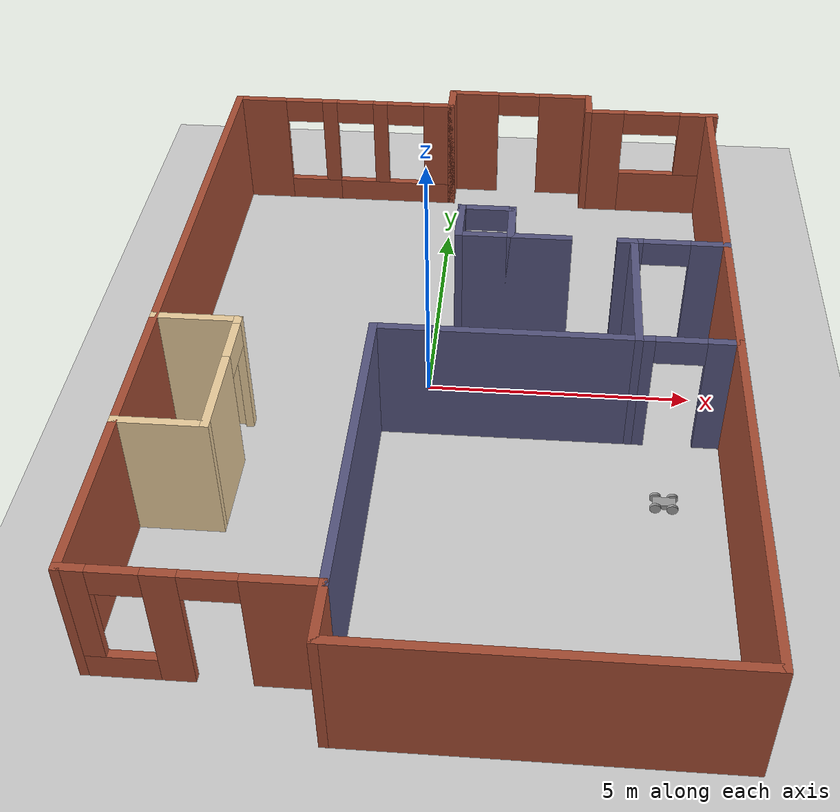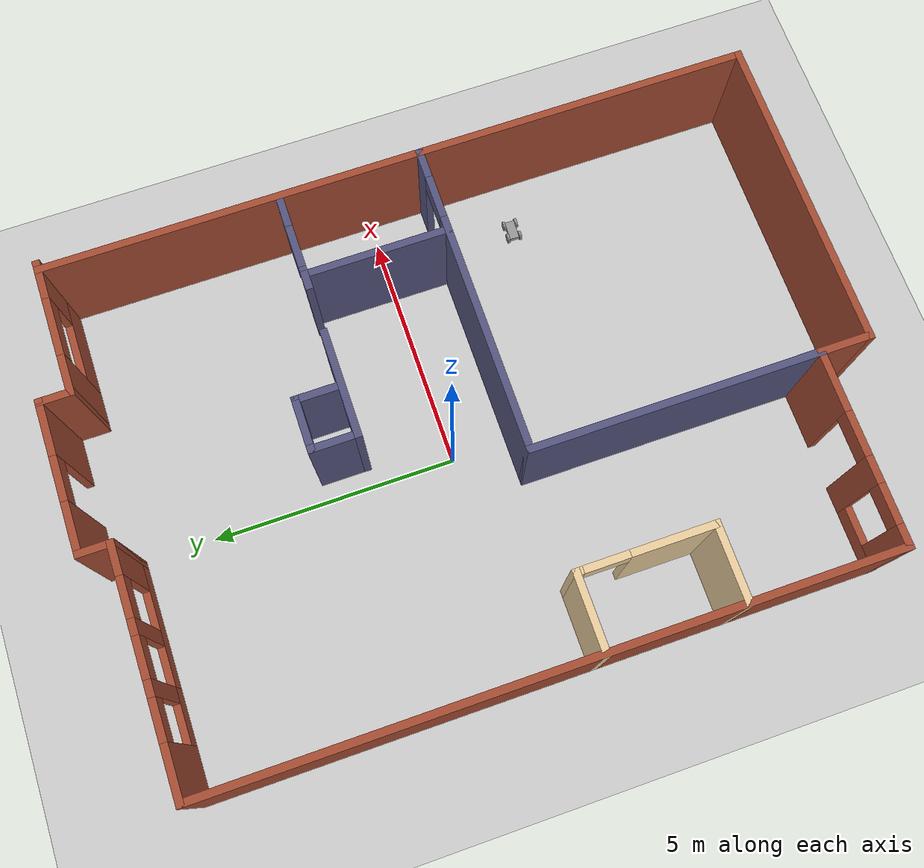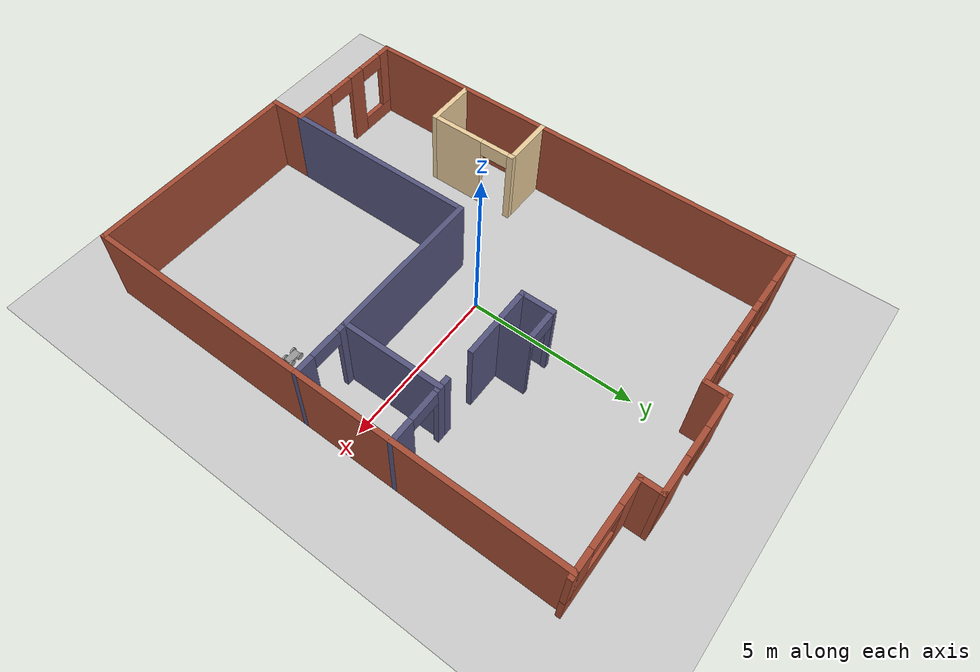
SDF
<sdf version="1.6">
 <world name="default">
  <model name="ground_plane">
   <static>1</static>
   <link name="link">
    <collision name="collision">
     <geometry><plane><normal>0 0 1</normal><size>100 100</size></plane></geometry>
     <surface>
      <contact><collide_bitmask>65535</collide_bitmask></contact>
      <friction><ode><mu>100</mu><mu2>50</mu2></ode></friction>
     </surface>
    </collision>
    <visual name="visual">
     <cast_shadows>0</cast_shadows>
     <geometry><plane><normal>0 0 1</normal><size>100 100</size></plane></geometry>
     <material>
      <script><uri>file://media/materials/scripts/gazebo.material</uri><name>Gazebo/Grey</name></script>
     </material>
    </visual>
   </link>
  </model>
  <model name="car">
   <link name="link_0">
    <inertial>
     <mass>1</mass>
     <inertia>
      <ixx>0.166667</ixx>
      <ixy>0</ixy>
      <ixz>0</ixz>
      <iyy>0.166667</iyy>
      <iyz>0</iyz>
      <izz>0.166667</izz>
     </inertia>
    </inertial>
    <visual name="visual">
     <geometry><box><size>0.4 0.2 0.1</size></box></geometry>
     <material>
      <lighting>1</lighting>
      <script><uri>file://media/materials/scripts/gazebo.material</uri><name>Gazebo/Grey</name></script>
      <shader type="pixel"><normal_map>__default__</normal_map></shader>
      <ambient>0.3 0.3 0.3 1</ambient>
      <diffuse>0.7 0.7 0.7 1</diffuse>
      <specular>0.01 0.01 0.01 1</specular>
      <emissive>0 0 0 1</emissive>
     </material>
    </visual>
    <collision name="collision">
     <geometry><box><size>0.4 0.2 0.1</size></box></geometry>
     <surface>
      <friction>
       <ode><mu>1</mu><mu2>1</mu2><fdir1>0 0 0</fdir1><slip1>0</slip1><slip2>0</slip2></ode>
       <torsional>
        <coefficient>1</coefficient>
        <patch_radius>0</patch_radius>
        <surface_radius>0</surface_radius>
        <use_patch_radius>1</use_patch_radius>
        <ode><slip>0</slip></ode>
       </torsional>
      </friction>
      <bounce><restitution_coefficient>0</restitution_coefficient><threshold>1e+06</threshold></bounce>
      <contact>
       <collide_without_contact>0</collide_without_contact>
       <collide_without_contact_bitmask>1</collide_without_contact_bitmask>
       <collide_bitmask>1</collide_bitmask>
       <ode>
        <soft_cfm>0</soft_cfm>
        <soft_erp>0.2</soft_erp>
        <kp>1e+13</kp>
        <kd>1</kd>
        <max_vel>0.01</max_vel>
        <min_depth>0</min_depth>
       </ode>
       <bullet>
        <split_impulse>1</split_impulse>
        <split_impulse_penetration_threshold>-0.01</split_impulse_penetration_threshold>
        <soft_cfm>0</soft_cfm>
        <soft_erp>0.2</soft_erp>
        <kp>1e+13</kp>
        <kd>1</kd>
       </bullet>
      </contact>
     </surface>
    </collision>
   </link>
   <link name="link_1">
    <pose>0.15 -0.13 0 0 -0 0</pose>
    <inertial>
     <mass>1</mass>
     <inertia><ixx>0.145833</ixx><ixy>0</ixy><ixz>0</ixz><iyy>0.145833</iyy><iyz>0</iyz><izz>0.125</izz></inertia>
    </inertial>
    <visual name="visual">
     <pose>0 0 0 1.5707 -0 0</pose>
     <geometry><cylinder><radius>0.1</radius><length>0.05</length></cylinder></geometry>
     <material>
      <lighting>1</lighting>
      <script><uri>file://media/materials/scripts/gazebo.material</uri><name>Gazebo/Grey</name></script>
      <shader type="pixel"><normal_map>__default__</normal_map></shader>
      <ambient>0.3 0.3 0.3 1</ambient>
      <diffuse>0.7 0.7 0.7 1</diffuse>
      <specular>0.01 0.01 0.01 1</specular>
      <emissive>0 0 0 1</emissive>
     </material>
    </visual>
    <collision name="collision">
     <pose>0 0 0 1.5707 -0 0</pose>
     <geometry><cylinder><radius>0.1</radius><length>0.05</length></cylinder></geometry>
     <surface>
      <friction>
       <ode><mu>1</mu><mu2>1</mu2><fdir1>0 0 0</fdir1><slip1>0</slip1><slip2>0</slip2></ode>
       <torsional>
        <coefficient>1</coefficient>
        <patch_radius>0</patch_radius>
        <surface_radius>0</surface_radius>
        <use_patch_radius>1</use_patch_radius>
        <ode><slip>0</slip></ode>
       </torsional>
      </friction>
      <bounce><restitution_coefficient>0</restitution_coefficient><threshold>1e+06</threshold></bounce>
      <contact>
       <collide_without_contact>0</collide_without_contact>
       <collide_without_contact_bitmask>1</collide_without_contact_bitmask>
       <collide_bitmask>1</collide_bitmask>
       <ode>
        <soft_cfm>0</soft_cfm>
        <soft_erp>0.2</soft_erp>
        <kp>1e+13</kp>
        <kd>1</kd>
        <max_vel>0.01</max_vel>
        <min_depth>0</min_depth>
       </ode>
       <bullet>
        <split_impulse>1</split_impulse>
        <split_impulse_penetration_threshold>-0.01</split_impulse_penetration_threshold>
        <soft_cfm>0</soft_cfm>
        <soft_erp>0.2</soft_erp>
        <kp>1e+13</kp>
        <kd>1</kd>
       </bullet>
      </contact>
     </surface>
    </collision>
   </link>
   <link name="link_1_clone">
    <pose>0.15 0.13 0 0 -0 0</pose>
    <inertial>
     <mass>1</mass>
     <inertia><ixx>0.145833</ixx><ixy>0</ixy><ixz>0</ixz><iyy>0.145833</iyy><iyz>0</iyz><izz>0.125</izz></inertia>
    </inertial>
    <visual name="visual">
     <pose>0 0 0 1.5707 -0 0</pose>
     <geometry><cylinder><radius>0.1</radius><length>0.05</length></cylinder></geometry>
     <material>
      <lighting>1</lighting>
      <script><uri>file://media/materials/scripts/gazebo.material</uri><name>Gazebo/Grey</name></script>
      <shader type="pixel"><normal_map>__default__</normal_map></shader>
      <ambient>0.3 0.3 0.3 1</ambient>
      <diffuse>0.7 0.7 0.7 1</diffuse>
      <specular>0.01 0.01 0.01 1</specular>
      <emissive>0 0 0 1</emissive>
     </material>
    </visual>
    <collision name="collision">
     <pose>0 0 0 1.5707 -0 0</pose>
     <geometry><cylinder><radius>0.1</radius><length>0.05</length></cylinder></geometry>
     <surface>
      <friction>
       <ode><mu>1</mu><mu2>1</mu2><fdir1>0 0 0</fdir1><slip1>0</slip1><slip2>0</slip2></ode>
       <torsional>
        <coefficient>1</coefficient>
        <patch_radius>0</patch_radius>
        <surface_radius>0</surface_radius>
        <use_patch_radius>1</use_patch_radius>
        <ode><slip>0</slip></ode>
       </torsional>
      </friction>
      <bounce><restitution_coefficient>0</restitution_coefficient><threshold>1e+06</threshold></bounce>
      <contact>
       <collide_without_contact>0</collide_without_contact>
       <collide_without_contact_bitmask>1</collide_without_contact_bitmask>
       <collide_bitmask>1</collide_bitmask>
       <ode>
        <soft_cfm>0</soft_cfm>
        <soft_erp>0.2</soft_erp>
        <kp>1e+13</kp>
        <kd>1</kd>
        <max_vel>0.01</max_vel>
        <min_depth>0</min_depth>
       </ode>
       <bullet>
        <split_impulse>1</split_impulse>
        <split_impulse_penetration_threshold>-0.01</split_impulse_penetration_threshold>
        <soft_cfm>0</soft_cfm>
        <soft_erp>0.2</soft_erp>
        <kp>1e+13</kp>
        <kd>1</kd>
       </bullet>
      </contact>
     </surface>
    </collision>
   </link>
   <link name="link_1_clone_0">
    <pose>-0.15 -0.13 0 0 -0 0</pose>
    <inertial>
     <mass>1</mass>
     <inertia><ixx>0.145833</ixx><ixy>0</ixy><ixz>0</ixz><iyy>0.145833</iyy><iyz>0</iyz><izz>0.125</izz></inertia>
    </inertial>
    <visual name="visual">
     <pose>0 0 0 1.5707 -0 0</pose>
     <geometry><cylinder><radius>0.1</radius><length>0.05</length></cylinder></geometry>
     <material>
      <lighting>1</lighting>
      <script><uri>file://media/materials/scripts/gazebo.material</uri><name>Gazebo/Grey</name></script>
      <shader type="pixel"><normal_map>__default__</normal_map></shader>
      <ambient>0.3 0.3 0.3 1</ambient>
      <diffuse>0.7 0.7 0.7 1</diffuse>
      <specular>0.01 0.01 0.01 1</specular>
      <emissive>0 0 0 1</emissive>
     </material>
    </visual>
    <collision name="collision">
     <pose>0 0 0 1.5707 -0 0</pose>
     <geometry><cylinder><radius>0.1</radius><length>0.05</length></cylinder></geometry>
     <surface>
      <friction>
       <ode><mu>1</mu><mu2>1</mu2><fdir1>0 0 0</fdir1><slip1>0</slip1><slip2>0</slip2></ode>
       <torsional>
        <coefficient>1</coefficient>
        <patch_radius>0</patch_radius>
        <surface_radius>0</surface_radius>
        <use_patch_radius>1</use_patch_radius>
        <ode><slip>0</slip></ode>
       </torsional>
      </friction>
      <bounce><restitution_coefficient>0</restitution_coefficient><threshold>1e+06</threshold></bounce>
      <contact>
       <collide_without_contact>0</collide_without_contact>
       <collide_without_contact_bitmask>1</collide_without_contact_bitmask>
       <collide_bitmask>1</collide_bitmask>
       <ode>
        <soft_cfm>0</soft_cfm>
        <soft_erp>0.2</soft_erp>
        <kp>1e+13</kp>
        <kd>1</kd>
        <max_vel>0.01</max_vel>
        <min_depth>0</min_depth>
       </ode>
       <bullet>
        <split_impulse>1</split_impulse>
        <split_impulse_penetration_threshold>-0.01</split_impulse_penetration_threshold>
        <soft_cfm>0</soft_cfm>
        <soft_erp>0.2</soft_erp>
        <kp>1e+13</kp>
        <kd>1</kd>
       </bullet>
      </contact>
     </surface>
    </collision>
   </link>
   <link name="link_1_clone_1">
    <pose>-0.15 0.13 0 0 -0 0</pose>
    <inertial>
     <mass>1</mass>
     <inertia><ixx>0.145833</ixx><ixy>0</ixy><ixz>0</ixz><iyy>0.145833</iyy><iyz>0</iyz><izz>0.125</izz></inertia>
    </inertial>
    <visual name="visual">
     <pose>0 0 0 1.5707 -0 0</pose>
     <geometry><cylinder><radius>0.1</radius><length>0.05</length></cylinder></geometry>
     <material>
      <lighting>1</lighting>
      <script><uri>file://media/materials/scripts/gazebo.material</uri><name>Gazebo/Grey</name></script>
      <shader type="pixel"><normal_map>__default__</normal_map></shader>
      <ambient>0.3 0.3 0.3 1</ambient>
      <diffuse>0.7 0.7 0.7 1</diffuse>
      <specular>0.01 0.01 0.01 1</specular>
      <emissive>0 0 0 1</emissive>
     </material>
    </visual>
    <collision name="collision">
     <pose>0 0 0 1.5707 -0 0</pose>
     <geometry><cylinder><radius>0.1</radius><length>0.05</length></cylinder></geometry>
     <surface>
      <friction>
       <ode><mu>1</mu><mu2>1</mu2><fdir1>0 0 0</fdir1><slip1>0</slip1><slip2>0</slip2></ode>
       <torsional>
        <coefficient>1</coefficient>
        <patch_radius>0</patch_radius>
        <surface_radius>0</surface_radius>
        <use_patch_radius>1</use_patch_radius>
        <ode><slip>0</slip></ode>
       </torsional>
      </friction>
      <bounce><restitution_coefficient>0</restitution_coefficient><threshold>1e+06</threshold></bounce>
      <contact>
       <collide_without_contact>0</collide_without_contact>
       <collide_without_contact_bitmask>1</collide_without_contact_bitmask>
       <collide_bitmask>1</collide_bitmask>
       <ode>
        <soft_cfm>0</soft_cfm>
        <soft_erp>0.2</soft_erp>
        <kp>1e+13</kp>
        <kd>1</kd>
        <max_vel>0.01</max_vel>
        <min_depth>0</min_depth>
       </ode>
       <bullet>
        <split_impulse>1</split_impulse>
        <split_impulse_penetration_threshold>-0.01</split_impulse_penetration_threshold>
        <soft_cfm>0</soft_cfm>
        <soft_erp>0.2</soft_erp>
        <kp>1e+13</kp>
        <kd>1</kd>
       </bullet>
      </contact>
     </surface>
    </collision>
   </link>
   <joint name="link_0_JOINT_1" type="revolute">
    <parent>link_0</parent>
    <child>link_1</child>
    <axis>
     <xyz>0 1 0</xyz>
     <use_parent_model_frame>0</use_parent_model_frame>
     <limit>
      <lower>-1.79769e+308</lower>
      <upper>1.79769e+308</upper>
      <effort>-1</effort>
      <velocity>-1</velocity>
     </limit>
     <dynamics>
      <spring_reference>0</spring_reference>
      <spring_stiffness>0</spring_stiffness>
      <damping>0</damping>
     </dynamics>
    </axis>
    <physics>
     <ode><limit><cfm>0</cfm><erp>0.2</erp></limit><suspension><cfm>0</cfm><erp>0.2</erp></suspension></ode>
    </physics>
   </joint>
   <joint name="link_0_JOINT_2" type="revolute">
    <parent>link_0</parent>
    <child>link_1_clone</child>
    <axis>
     <xyz>0 -1 0</xyz>
     <use_parent_model_frame>0</use_parent_model_frame>
     <limit>
      <lower>-1.79769e+308</lower>
      <upper>1.79769e+308</upper>
      <effort>-1</effort>
      <velocity>-1</velocity>
     </limit>
     <dynamics>
      <spring_reference>0</spring_reference>
      <spring_stiffness>0</spring_stiffness>
      <damping>0</damping>
     </dynamics>
    </axis>
    <physics>
     <ode><limit><cfm>0</cfm><erp>0.2</erp></limit><suspension><cfm>0</cfm><erp>0.2</erp></suspension></ode>
    </physics>
   </joint>
   <joint name="link_0_JOINT_3" type="revolute">
    <parent>link_0</parent>
    <child>link_1_clone_0</child>
    <axis>
     <xyz>0 1 0</xyz>
     <use_parent_model_frame>0</use_parent_model_frame>
     <limit>
      <lower>-1.79769e+308</lower>
      <upper>1.79769e+308</upper>
      <effort>-1</effort>
      <velocity>-1</velocity>
     </limit>
     <dynamics>
      <spring_reference>0</spring_reference>
      <spring_stiffness>0</spring_stiffness>
      <damping>0</damping>
     </dynamics>
    </axis>
    <physics>
     <ode><limit><cfm>0</cfm><erp>0.2</erp></limit><suspension><cfm>0</cfm><erp>0.2</erp></suspension></ode>
    </physics>
   </joint>
   <joint name="link_0_JOINT_4" type="revolute">
    <parent>link_0</parent>
    <child>link_1_clone_1</child>
    <axis>
     <xyz>0 -1 0</xyz>
     <use_parent_model_frame>0</use_parent_model_frame>
     <limit>
      <lower>-1.79769e+308</lower>
      <upper>1.79769e+308</upper>
      <effort>-1</effort>
      <velocity>-1</velocity>
     </limit>
     <dynamics>
      <spring_reference>0</spring_reference>
      <spring_stiffness>0</spring_stiffness>
      <damping>0</damping>
     </dynamics>
    </axis>
    <physics>
     <ode><limit><cfm>0</cfm><erp>0.2</erp></limit><suspension><cfm>0</cfm><erp>0.2</erp></suspension></ode>
    </physics>
   </joint>
   <static>0</static>
   <pose>4.39353 -2.83757 0.099999 -1e-06 1.8e-05 -0.035914</pose>
  </model>
  <model name="house">
   <pose>0.45685 -0.464017 0 0 -0 0</pose>
   <link name="Wall_0">
    <collision name="Wall_0_Collision">
     <geometry><box><size>13.65 0.15 2.5</size></box></geometry>
     <pose>0 0 1.25 0 -0 0</pose>
    </collision>
    <visual name="Wall_0_Visual">
     <pose>0 0 1.25 0 -0 0</pose>
     <geometry><box><size>13.65 0.15 2.5</size></box></geometry>
     <material>
      <script><uri>file://media/materials/scripts/gazebo.material</uri><name>Gazebo/Bricks</name></script>
      <ambient>1 1 1 1</ambient>
     </material>
     <meta><layer>0</layer></meta>
    </visual>
    <pose>-5.21103 0.2 0 0 -0 1.5708</pose>
   </link>
   <link name="Wall_1">
    <pose>-2.86103 6.95 0 0 -0 0</pose>
    <visual name="Wall_1_Visual_0">
     <pose>-1.86275 0 1.25 0 -0 0</pose>
     <geometry><box><size>1.12451 0.15 2.5</size></box></geometry>
     <material>
      <script><uri>file://media/materials/scripts/gazebo.material</uri><name>Gazebo/Bricks</name></script>
      <ambient>1 1 1 1</ambient>
     </material>
     <meta><layer>0</layer></meta>
    </visual>
    <collision name="Wall_1_Collision_0">
     <geometry><box><size>1.12451 0.15 2.5</size></box></geometry>
     <pose>-1.86275 0 1.25 0 -0 0</pose>
    </collision>
    <visual name="Wall_1_Visual_1">
     <pose>-0.739033 0 0.25 0 -0 0</pose>
     <geometry><box><size>1.12292 0.15 0.5</size></box></geometry>
     <material>
      <script><uri>file://media/materials/scripts/gazebo.material</uri><name>Gazebo/Bricks</name></script>
      <ambient>1 1 1 1</ambient>
     </material>
     <meta><layer>0</layer></meta>
    </visual>
    <collision name="Wall_1_Collision_1">
     <geometry><box><size>1.12292 0.15 0.5</size></box></geometry>
     <pose>-0.739033 0 0.25 0 -0 0</pose>
    </collision>
    <visual name="Wall_1_Visual_2">
     <pose>1.12371 0 0.25 0 -0 0</pose>
     <geometry><box><size>2.60257 0.15 0.5</size></box></geometry>
     <material>
      <script><uri>file://media/materials/scripts/gazebo.material</uri><name>Gazebo/Bricks</name></script>
      <ambient>1 1 1 1</ambient>
     </material>
     <meta><layer>0</layer></meta>
    </visual>
    <collision name="Wall_1_Collision_2">
     <geometry><box><size>2.60257 0.15 0.5</size></box></geometry>
     <pose>1.12371 0 0.25 0 -0 0</pose>
    </collision>
    <visual name="Wall_1_Visual_3">
     <pose>0.779084 0 1.5 0 -0 0</pose>
     <geometry><box><size>0.313318 0.15 2</size></box></geometry>
     <material>
      <script><uri>file://media/materials/scripts/gazebo.material</uri><name>Gazebo/Bricks</name></script>
      <ambient>1 1 1 1</ambient>
     </material>
     <meta><layer>0</layer></meta>
    </visual>
    <collision name="Wall_1_Collision_3">
     <geometry><box><size>0.313318 0.15 2</size></box></geometry>
     <pose>0.779084 0 1.5 0 -0 0</pose>
    </collision>
    <visual name="Wall_1_Visual_4">
     <pose>2.08037 0 1.5 0 -0 0</pose>
     <geometry><box><size>0.689257 0.15 2</size></box></geometry>
     <material>
      <script><uri>file://media/materials/scripts/gazebo.material</uri><name>Gazebo/Bricks</name></script>
      <ambient>1 1 1 1</ambient>
     </material>
     <meta><layer>0</layer></meta>
    </visual>
    <collision name="Wall_1_Collision_4">
     <geometry><box><size>0.689257 0.15 2</size></box></geometry>
     <pose>2.08037 0 1.5 0 -0 0</pose>
    </collision>
    <visual name="Wall_1_Visual_5">
     <pose>-0.339033 0 1.5 0 -0 0</pose>
     <geometry><box><size>0.322915 0.15 2</size></box></geometry>
     <material>
      <script><uri>file://media/materials/scripts/gazebo.material</uri><name>Gazebo/Bricks</name></script>
      <ambient>1 1 1 1</ambient>
     </material>
     <meta><layer>0</layer></meta>
    </visual>
    <collision name="Wall_1_Collision_5">
     <geometry><box><size>0.322915 0.15 2</size></box></geometry>
     <pose>-0.339033 0 1.5 0 -0 0</pose>
    </collision>
    <visual name="Wall_1_Visual_6">
     <pose>-0.339033 0 1.5 0 -0 0</pose>
     <geometry><box><size>0.322915 0.15 2</size></box></geometry>
     <material>
      <script><uri>file://media/materials/scripts/gazebo.material</uri><name>Gazebo/Bricks</name></script>
      <ambient>1 1 1 1</ambient>
     </material>
     <meta><layer>0</layer></meta>
    </visual>
    <collision name="Wall_1_Collision_6">
     <geometry><box><size>0.322915 0.15 2</size></box></geometry>
     <pose>-0.339033 0 1.5 0 -0 0</pose>
    </collision>
    <visual name="Wall_1_Visual_7">
     <pose>1.33574 0 2.25 0 -0 0</pose>
     <geometry><box><size>0.8 0.15 0.5</size></box></geometry>
     <material>
      <script><uri>file://media/materials/scripts/gazebo.material</uri><name>Gazebo/Bricks</name></script>
      <ambient>1 1 1 1</ambient>
     </material>
     <meta><layer>0</layer></meta>
    </visual>
    <collision name="Wall_1_Collision_7">
     <geometry><box><size>0.8 0.15 0.5</size></box></geometry>
     <pose>1.33574 0 2.25 0 -0 0</pose>
    </collision>
    <visual name="Wall_1_Visual_8">
     <pose>0.222425 0 2.25 0 -0 0</pose>
     <geometry><box><size>0.8 0.15 0.5</size></box></geometry>
     <material>
      <script><uri>file://media/materials/scripts/gazebo.material</uri><name>Gazebo/Bricks</name></script>
      <ambient>1 1 1 1</ambient>
     </material>
     <meta><layer>0</layer></meta>
    </visual>
    <collision name="Wall_1_Collision_8">
     <geometry><box><size>0.8 0.15 0.5</size></box></geometry>
     <pose>0.222425 0 2.25 0 -0 0</pose>
    </collision>
    <visual name="Wall_1_Visual_9">
     <pose>0.222425 0 2.25 0 -0 0</pose>
     <geometry><box><size>0.8 0.15 0.5</size></box></geometry>
     <material>
      <script><uri>file://media/materials/scripts/gazebo.material</uri><name>Gazebo/Bricks</name></script>
      <ambient>1 1 1 1</ambient>
     </material>
     <meta><layer>0</layer></meta>
    </visual>
    <collision name="Wall_1_Collision_9">
     <geometry><box><size>0.8 0.15 0.5</size></box></geometry>
     <pose>0.222425 0 2.25 0 -0 0</pose>
    </collision>
    <visual name="Wall_1_Visual_10">
     <pose>-0.90049 0 2.25 0 -0 0</pose>
     <geometry><box><size>0.8 0.15 0.5</size></box></geometry>
     <material>
      <script><uri>file://media/materials/scripts/gazebo.material</uri><name>Gazebo/Bricks</name></script>
      <ambient>1 1 1 1</ambient>
     </material>
     <meta><layer>0</layer></meta>
    </visual>
    <collision name="Wall_1_Collision_10">
     <geometry><box><size>0.8 0.15 0.5</size></box></geometry>
     <pose>-0.90049 0 2.25 0 -0 0</pose>
    </collision>
   </link>
   <link name="Wall_11">
    <collision name="Wall_11_Collision">
     <geometry><box><size>5.95 0.15 2.5</size></box></geometry>
     <pose>0 0 1.25 0 -0 0</pose>
    </collision>
    <visual name="Wall_11_Visual">
     <pose>0 0 1.25 0 -0 0</pose>
     <geometry><box><size>5.95 0.15 2.5</size></box></geometry>
     <material>
      <script><uri>file://media/materials/scripts/gazebo.material</uri><name>Gazebo/Grey</name></script>
      <ambient>0.333333 0.333333 0.498039 1</ambient>
     </material>
     <meta><layer>0</layer></meta>
    </visual>
    <pose>-1.31103 -3.65 0 0 -0 1.5708</pose>
   </link>
   <link name="Wall_12">
    <pose>1.88897 -0.75 0 0 -0 0</pose>
    <visual name="Wall_12_Visual_0">
     <pose>-0.769836 0 1.25 0 -0 0</pose>
     <geometry><box><size>5.01033 0.15 2.5</size></box></geometry>
     <material>
      <script><uri>file://media/materials/scripts/gazebo.material</uri><name>Gazebo/Grey</name></script>
      <ambient>0.333333 0.333333 0.498039 1</ambient>
     </material>
     <meta><layer>0</layer></meta>
    </visual>
    <collision name="Wall_12_Collision_0">
     <geometry><box><size>5.01033 0.15 2.5</size></box></geometry>
     <pose>-0.769836 0 1.25 0 -0 0</pose>
    </collision>
    <visual name="Wall_12_Visual_1">
     <pose>2.95516 0 1.25 0 -0 0</pose>
     <geometry><box><size>0.639672 0.15 2.5</size></box></geometry>
     <material>
      <script><uri>file://media/materials/scripts/gazebo.material</uri><name>Gazebo/Grey</name></script>
      <ambient>0.333333 0.333333 0.498039 1</ambient>
     </material>
     <meta><layer>0</layer></meta>
    </visual>
    <collision name="Wall_12_Collision_1">
     <geometry><box><size>0.639672 0.15 2.5</size></box></geometry>
     <pose>2.95516 0 1.25 0 -0 0</pose>
    </collision>
    <visual name="Wall_12_Visual_2">
     <pose>2.18533 0 2.25 0 -0 0</pose>
     <geometry><box><size>0.9 0.15 0.5</size></box></geometry>
     <material>
      <script><uri>file://media/materials/scripts/gazebo.material</uri><name>Gazebo/Grey</name></script>
      <ambient>0.333333 0.333333 0.498039 1</ambient>
     </material>
     <meta><layer>0</layer></meta>
    </visual>
    <collision name="Wall_12_Collision_2">
     <geometry><box><size>0.9 0.15 0.5</size></box></geometry>
     <pose>2.18533 0 2.25 0 -0 0</pose>
    </collision>
   </link>
   <link name="Wall_14">
    <pose>4.21397 2.15 0 0 -0 3.14159</pose>
    <visual name="Wall_14_Visual_0">
     <pose>-0.571897 0 1.25 0 -0 0</pose>
     <geometry><box><size>0.756207 0.15 2.5</size></box></geometry>
     <material>
      <script><uri>file://media/materials/scripts/gazebo.material</uri><name>Gazebo/Grey</name></script>
      <ambient>0.333333 0.333333 0.498039 1</ambient>
     </material>
     <meta><layer>0</layer></meta>
    </visual>
    <collision name="Wall_14_Collision_0">
     <geometry><box><size>0.756207 0.15 2.5</size></box></geometry>
     <pose>-0.571897 0 1.25 0 -0 0</pose>
    </collision>
    <visual name="Wall_14_Visual_1">
     <pose>0.828103 0 1.25 0 -0 0</pose>
     <geometry><box><size>0.243793 0.15 2.5</size></box></geometry>
     <material>
      <script><uri>file://media/materials/scripts/gazebo.material</uri><name>Gazebo/Grey</name></script>
      <ambient>0.333333 0.333333 0.498039 1</ambient>
     </material>
     <meta><layer>0</layer></meta>
    </visual>
    <collision name="Wall_14_Collision_1">
     <geometry><box><size>0.243793 0.15 2.5</size></box></geometry>
     <pose>0.828103 0 1.25 0 -0 0</pose>
    </collision>
    <visual name="Wall_14_Visual_2">
     <pose>0.256207 0 2.25 0 -0 0</pose>
     <geometry><box><size>0.9 0.15 0.5</size></box></geometry>
     <material>
      <script><uri>file://media/materials/scripts/gazebo.material</uri><name>Gazebo/Grey</name></script>
      <ambient>0.333333 0.333333 0.498039 1</ambient>
     </material>
     <meta><layer>0</layer></meta>
    </visual>
    <collision name="Wall_14_Collision_2">
     <geometry><box><size>0.9 0.15 0.5</size></box></geometry>
     <pose>0.256207 0 2.25 0 -0 0</pose>
    </collision>
   </link>
   <link name="Wall_15">
    <collision name="Wall_15_Collision">
     <geometry><box><size>0.4 0.15 2.5</size></box></geometry>
     <pose>0 0 1.25 0 -0 0</pose>
    </collision>
    <visual name="Wall_15_Visual">
     <pose>0 0 1.25 0 -0 0</pose>
     <geometry><box><size>0.4 0.15 2.5</size></box></geometry>
     <material>
      <script><uri>file://media/materials/scripts/gazebo.material</uri><name>Gazebo/Grey</name></script>
      <ambient>0.333333 0.333333 0.498039 1</ambient>
     </material>
     <meta><layer>0</layer></meta>
    </visual>
    <pose>3.21397 2.15 0 0 -0 3.14159</pose>
   </link>
   <link name="Wall_17">
    <collision name="Wall_17_Collision">
     <geometry><box><size>3.05 0.15 2.5</size></box></geometry>
     <pose>0 0 1.25 0 -0 0</pose>
    </collision>
    <visual name="Wall_17_Visual">
     <pose>0 0 1.25 0 -0 0</pose>
     <geometry><box><size>3.05 0.15 2.5</size></box></geometry>
     <material>
      <script><uri>file://media/materials/scripts/gazebo.material</uri><name>Gazebo/Grey</name></script>
      <ambient>0.333333 0.333333 0.498039 1</ambient>
     </material>
     <meta><layer>0</layer></meta>
    </visual>
    <pose>3.33897 0.7 0 0 0 -1.5708</pose>
   </link>
   <link name="Wall_19">
    <collision name="Wall_19_Collision">
     <geometry><box><size>2.25 0.15 2.5</size></box></geometry>
     <pose>0 0 1.25 0 -0 0</pose>
    </collision>
    <visual name="Wall_19_Visual">
     <pose>0 0 1.25 0 -0 0</pose>
     <geometry><box><size>2.25 0.15 2.5</size></box></geometry>
     <material>
      <script><uri>file://media/materials/scripts/gazebo.material</uri><name>Gazebo/Grey</name></script>
      <ambient>0.333333 0.333333 0.498039 1</ambient>
     </material>
     <meta><layer>0</layer></meta>
    </visual>
    <pose>1.03897 2.15 0 0 -0 3.14159</pose>
   </link>
   <link name="Wall_2">
    <collision name="Wall_2_Collision">
     <geometry><box><size>0.75 0.15 2.5</size></box></geometry>
     <pose>0 0 1.25 0 -0 0</pose>
    </collision>
    <visual name="Wall_2_Visual">
     <pose>0 0 1.25 0 -0 0</pose>
     <geometry><box><size>0.75 0.15 2.5</size></box></geometry>
     <material>
      <script><uri>file://media/materials/scripts/gazebo.material</uri><name>Gazebo/Bricks</name></script>
      <ambient>1 1 1 1</ambient>
     </material>
     <meta><layer>0</layer></meta>
    </visual>
    <pose>-0.511027 7.25 0 0 -0 1.5708</pose>
   </link>
   <link name="Wall_21">
    <collision name="Wall_21_Collision">
     <geometry><box><size>6.95 0.15 2.5</size></box></geometry>
     <pose>0 0 1.25 0 -0 0</pose>
    </collision>
    <visual name="Wall_21_Visual">
     <pose>0 0 1.25 0 -0 0</pose>
     <geometry><box><size>6.95 0.15 2.5</size></box></geometry>
     <material>
      <script><uri>file://media/materials/scripts/gazebo.material</uri><name>Gazebo/Bricks</name></script>
      <ambient>0.333333 0.333333 0.498039 1</ambient>
     </material>
     <meta><layer>0</layer></meta>
    </visual>
    <pose>5.08897 -4.15 0 0 -0 1.5708</pose>
   </link>
   <link name="Wall_23">
    <collision name="Wall_23_Collision">
     <geometry><box><size>7.85 0.15 2.5</size></box></geometry>
     <pose>0 0 1.25 0 -0 0</pose>
    </collision>
    <visual name="Wall_23_Visual">
     <pose>0 0 1.25 0 -0 0</pose>
     <geometry><box><size>7.85 0.15 2.5</size></box></geometry>
     <material>
      <script><uri>file://media/materials/scripts/gazebo.material</uri><name>Gazebo/Bricks</name></script>
      <ambient>1 1 1 1</ambient>
     </material>
     <meta><layer>0</layer></meta>
    </visual>
    <pose>5.08897 3.1 0 0 0 -1.5708</pose>
   </link>
   <link name="Wall_25">
    <collision name="Wall_25_Collision">
     <geometry><box><size>1.65 0.15 2.5</size></box></geometry>
     <pose>0 0 1.25 0 -0 0</pose>
    </collision>
    <visual name="Wall_25_Visual">
     <pose>0 0 1.25 0 -0 0</pose>
     <geometry><box><size>1.65 0.15 2.5</size></box></geometry>
     <material>
      <script><uri>file://media/materials/scripts/gazebo.material</uri><name>Gazebo/Grey</name></script>
      <ambient>0.921569 0.807843 0.615686 1</ambient>
     </material>
     <meta><layer>0</layer></meta>
    </visual>
    <pose>-4.46103 -0.75 0 0 -0 0</pose>
   </link>
   <link name="Wall_27">
    <pose>-3.71103 -2.1 0 0 0 -1.5708</pose>
    <visual name="Wall_27_Visual_0">
     <pose>-1.32193 0 1.25 0 -0 0</pose>
     <geometry><box><size>0.206147 0.15 2.5</size></box></geometry>
     <material>
      <script><uri>file://media/materials/scripts/gazebo.material</uri><name>Gazebo/Grey</name></script>
      <ambient>0.921569 0.807843 0.615686 1</ambient>
     </material>
     <meta><layer>0</layer></meta>
    </visual>
    <collision name="Wall_27_Collision_0">
     <geometry><box><size>0.206147 0.15 2.5</size></box></geometry>
     <pose>-1.32193 0 1.25 0 -0 0</pose>
    </collision>
    <visual name="Wall_27_Visual_1">
     <pose>0.553073 0 1.25 0 -0 0</pose>
     <geometry><box><size>1.74385 0.15 2.5</size></box></geometry>
     <material>
      <script><uri>file://media/materials/scripts/gazebo.material</uri><name>Gazebo/Grey</name></script>
      <ambient>0.921569 0.807843 0.615686 1</ambient>
     </material>
     <meta><layer>0</layer></meta>
    </visual>
    <collision name="Wall_27_Collision_1">
     <geometry><box><size>1.74385 0.15 2.5</size></box></geometry>
     <pose>0.553073 0 1.25 0 -0 0</pose>
    </collision>
    <visual name="Wall_27_Visual_2">
     <pose>-0.768853 0 2.25 0 -0 0</pose>
     <geometry><box><size>0.9 0.15 0.5</size></box></geometry>
     <material>
      <script><uri>file://media/materials/scripts/gazebo.material</uri><name>Gazebo/Grey</name></script>
      <ambient>0.921569 0.807843 0.615686 1</ambient>
     </material>
     <meta><layer>0</layer></meta>
    </visual>
    <collision name="Wall_27_Collision_2">
     <geometry><box><size>0.9 0.15 0.5</size></box></geometry>
     <pose>-0.768853 0 2.25 0 -0 0</pose>
    </collision>
   </link>
   <link name="Wall_29">
    <collision name="Wall_29_Collision">
     <geometry><box><size>1.65 0.15 2.5</size></box></geometry>
     <pose>0 0 1.25 0 -0 0</pose>
    </collision>
    <visual name="Wall_29_Visual">
     <pose>0 0 1.25 0 -0 0</pose>
     <geometry><box><size>1.65 0.15 2.5</size></box></geometry>
     <material>
      <script><uri>file://media/materials/scripts/gazebo.material</uri><name>Gazebo/Grey</name></script>
      <ambient>0.921569 0.807843 0.615686 1</ambient>
     </material>
     <meta><layer>0</layer></meta>
    </visual>
    <pose>-4.46103 -3.45 0 0 -0 3.14159</pose>
   </link>
   <link name="Wall_3">
    <pose>0.988973 7.55 0 0 -0 0</pose>
    <visual name="Wall_3_Visual_0">
     <pose>-1.03006 0 1.25 0 -0 0</pose>
     <geometry><box><size>1.08987 0.15 2.5</size></box></geometry>
     <material>
      <script><uri>file://media/materials/scripts/gazebo.material</uri><name>Gazebo/Bricks</name></script>
      <ambient>1 1 1 1</ambient>
     </material>
     <meta><layer>0</layer></meta>
    </visual>
    <collision name="Wall_3_Collision_0">
     <geometry><box><size>1.08987 0.15 2.5</size></box></geometry>
     <pose>-1.03006 0 1.25 0 -0 0</pose>
    </collision>
    <visual name="Wall_3_Visual_1">
     <pose>0.994936 0 1.25 0 -0 0</pose>
     <geometry><box><size>1.16013 0.15 2.5</size></box></geometry>
     <material>
      <script><uri>file://media/materials/scripts/gazebo.material</uri><name>Gazebo/Bricks</name></script>
      <ambient>1 1 1 1</ambient>
     </material>
     <meta><layer>0</layer></meta>
    </visual>
    <collision name="Wall_3_Collision_1">
     <geometry><box><size>1.16013 0.15 2.5</size></box></geometry>
     <pose>0.994936 0 1.25 0 -0 0</pose>
    </collision>
    <visual name="Wall_3_Visual_2">
     <pose>-0.035127 0 2.25 0 -0 0</pose>
     <geometry><box><size>0.9 0.15 0.5</size></box></geometry>
     <material>
      <script><uri>file://media/materials/scripts/gazebo.material</uri><name>Gazebo/Bricks</name></script>
      <ambient>1 1 1 1</ambient>
     </material>
     <meta><layer>0</layer></meta>
    </visual>
    <collision name="Wall_3_Collision_2">
     <geometry><box><size>0.9 0.15 0.5</size></box></geometry>
     <pose>-0.035127 0 2.25 0 -0 0</pose>
    </collision>
   </link>
   <link name="Wall_31">
    <collision name="Wall_31_Collision">
     <geometry><box><size>1.05 0.15 2.5</size></box></geometry>
     <pose>0 0 1.25 0 -0 0</pose>
    </collision>
    <visual name="Wall_31_Visual">
     <pose>0 0 1.25 0 -0 0</pose>
     <geometry><box><size>1.05 0.15 2.5</size></box></geometry>
     <material>
      <script><uri>file://media/materials/scripts/gazebo.material</uri><name>Gazebo/Grey</name></script>
      <ambient>0.333333 0.333333 0.498039 1</ambient>
     </material>
     <meta><layer>0</layer></meta>
    </visual>
    <pose>-0.011027 2.6 0 0 -0 1.5708</pose>
   </link>
   <link name="Wall_32">
    <pose>0.488973 3.05 0 0 -0 0</pose>
    <visual name="Wall_32_Visual_0">
     <pose>-0.493715 0 1.25 0 -0 0</pose>
     <geometry><box><size>0.16257 0.15 2.5</size></box></geometry>
     <material>
      <script><uri>file://media/materials/scripts/gazebo.material</uri><name>Gazebo/Grey</name></script>
      <ambient>0.333333 0.333333 0.498039 1</ambient>
     </material>
     <meta><layer>0</layer></meta>
    </visual>
    <collision name="Wall_32_Collision_0">
     <geometry><box><size>0.16257 0.15 2.5</size></box></geometry>
     <pose>-0.493715 0 1.25 0 -0 0</pose>
    </collision>
    <visual name="Wall_32_Visual_1">
     <pose>0.531285 0 1.25 0 -0 0</pose>
     <geometry><box><size>0.08743 0.15 2.5</size></box></geometry>
     <material>
      <script><uri>file://media/materials/scripts/gazebo.material</uri><name>Gazebo/Grey</name></script>
      <ambient>0.333333 0.333333 0.498039 1</ambient>
     </material>
     <meta><layer>0</layer></meta>
    </visual>
    <collision name="Wall_32_Collision_1">
     <geometry><box><size>0.08743 0.15 2.5</size></box></geometry>
     <pose>0.531285 0 1.25 0 -0 0</pose>
    </collision>
    <visual name="Wall_32_Visual_2">
     <pose>0.03757 0 2.25 0 -0 0</pose>
     <geometry><box><size>0.9 0.15 0.5</size></box></geometry>
     <material>
      <script><uri>file://media/materials/scripts/gazebo.material</uri><name>Gazebo/Grey</name></script>
      <ambient>0.333333 0.333333 0.498039 1</ambient>
     </material>
     <meta><layer>0</layer></meta>
    </visual>
    <collision name="Wall_32_Collision_2">
     <geometry><box><size>0.9 0.15 0.5</size></box></geometry>
     <pose>0.03757 0 2.25 0 -0 0</pose>
    </collision>
   </link>
   <link name="Wall_33">
    <collision name="Wall_33_Collision">
     <geometry><box><size>1.05 0.15 2.5</size></box></geometry>
     <pose>0 0 1.25 0 -0 0</pose>
    </collision>
    <visual name="Wall_33_Visual">
     <pose>0 0 1.25 0 -0 0</pose>
     <geometry><box><size>1.05 0.15 2.5</size></box></geometry>
     <material>
      <script><uri>file://media/materials/scripts/gazebo.material</uri><name>Gazebo/Grey</name></script>
      <ambient>0.333333 0.333333 0.498039 1</ambient>
     </material>
     <meta><layer>0</layer></meta>
    </visual>
    <pose>0.988973 2.6 0 0 0 -1.5708</pose>
   </link>
   <link name="Wall_4">
    <collision name="Wall_4_Collision">
     <geometry><box><size>0.75 0.15 2.5</size></box></geometry>
     <pose>0 0 1.25 0 -0 0</pose>
    </collision>
    <visual name="Wall_4_Visual">
     <pose>0 0 1.25 0 -0 0</pose>
     <geometry><box><size>0.75 0.15 2.5</size></box></geometry>
     <material>
      <script><uri>file://media/materials/scripts/gazebo.material</uri><name>Gazebo/Bricks</name></script>
      <ambient>1 1 1 1</ambient>
     </material>
     <meta><layer>0</layer></meta>
    </visual>
    <pose>2.48897 7.25 0 0 0 -1.5708</pose>
   </link>
   <link name="Wall_5">
    <pose>3.85 6.95 0 0 -0 0</pose>
    <visual name="Wall_5_Visual_0">
     <pose>-1.01203 0 1.25 0 -0 0</pose>
     <geometry><box><size>0.847994 0.15 2.5</size></box></geometry>
     <material>
      <script><uri>file://media/materials/scripts/gazebo.material</uri><name>Gazebo/Bricks</name></script>
      <ambient>1 1 1 1</ambient>
     </material>
     <meta><layer>0</layer></meta>
    </visual>
    <collision name="Wall_5_Collision_0">
     <geometry><box><size>0.847994 0.15 2.5</size></box></geometry>
     <pose>-1.01203 0 1.25 0 -0 0</pose>
    </collision>
    <visual name="Wall_5_Visual_1">
     <pose>0.423997 0 0.5 0 -0 0</pose>
     <geometry><box><size>2.02406 0.15 1</size></box></geometry>
     <material>
      <script><uri>file://media/materials/scripts/gazebo.material</uri><name>Gazebo/Bricks</name></script>
      <ambient>1 1 1 1</ambient>
     </material>
     <meta><layer>0</layer></meta>
    </visual>
    <collision name="Wall_5_Collision_1">
     <geometry><box><size>2.02406 0.15 1</size></box></geometry>
     <pose>0.423997 0 0.5 0 -0 0</pose>
    </collision>
    <visual name="Wall_5_Visual_2">
     <pose>1.024 0 1.75 0 -0 0</pose>
     <geometry><box><size>0.824062 0.15 1.5</size></box></geometry>
     <material>
      <script><uri>file://media/materials/scripts/gazebo.material</uri><name>Gazebo/Bricks</name></script>
      <ambient>1 1 1 1</ambient>
     </material>
     <meta><layer>0</layer></meta>
    </visual>
    <collision name="Wall_5_Collision_2">
     <geometry><box><size>0.824062 0.15 1.5</size></box></geometry>
     <pose>1.024 0 1.75 0 -0 0</pose>
    </collision>
    <visual name="Wall_5_Visual_3">
     <pose>0.011966 0 2.25 0 -0 0</pose>
     <geometry><box><size>1.2 0.15 0.5</size></box></geometry>
     <material>
      <script><uri>file://media/materials/scripts/gazebo.material</uri><name>Gazebo/Bricks</name></script>
      <ambient>1 1 1 1</ambient>
     </material>
     <meta><layer>0</layer></meta>
    </visual>
    <collision name="Wall_5_Collision_3">
     <geometry><box><size>1.2 0.15 0.5</size></box></geometry>
     <pose>0.011966 0 2.25 0 -0 0</pose>
    </collision>
   </link>
   <link name="Wall_7">
    <collision name="Wall_7_Collision">
     <geometry><box><size>6.55 0.15 2.5</size></box></geometry>
     <pose>0 0 1.25 0 -0 0</pose>
    </collision>
    <visual name="Wall_7_Visual">
     <pose>0 0 1.25 0 -0 0</pose>
     <geometry><box><size>6.55 0.15 2.5</size></box></geometry>
     <material>
      <script><uri>file://media/materials/scripts/gazebo.material</uri><name>Gazebo/Bricks</name></script>
      <ambient>0.333333 0.333333 0.498039 1</ambient>
     </material>
     <meta><layer>0</layer></meta>
    </visual>
    <pose>1.88897 -7.55 0 0 -0 3.14159</pose>
   </link>
   <link name="Wall_8">
    <collision name="Wall_8_Collision">
     <geometry><box><size>1.15 0.15 2.5</size></box></geometry>
     <pose>0 0 1.25 0 -0 0</pose>
    </collision>
    <visual name="Wall_8_Visual">
     <pose>0 0 1.25 0 -0 0</pose>
     <geometry><box><size>1.15 0.15 2.5</size></box></geometry>
     <material>
      <script><uri>file://media/materials/scripts/gazebo.material</uri><name>Gazebo/Bricks</name></script>
      <ambient>0.333333 0.333333 0.498039 1</ambient>
     </material>
     <meta><layer>0</layer></meta>
    </visual>
    <pose>-1.31103 -7.05 0 0 -0 1.5708</pose>
   </link>
   <link name="Wall_9">
    <pose>-3.26103 -6.55 0 0 -0 3.14159</pose>
    <visual name="Wall_9_Visual_0">
     <pose>-1.3721 0 1.25 0 -0 0</pose>
     <geometry><box><size>1.3058 0.15 2.5</size></box></geometry>
     <material>
      <script><uri>file://media/materials/scripts/gazebo.material</uri><name>Gazebo/Bricks</name></script>
      <ambient>1 1 1 1</ambient>
     </material>
     <meta><layer>0</layer></meta>
    </visual>
    <collision name="Wall_9_Collision_0">
     <geometry><box><size>1.3058 0.15 2.5</size></box></geometry>
     <pose>-1.3721 0 1.25 0 -0 0</pose>
    </collision>
    <visual name="Wall_9_Visual_1">
     <pose>0.452627 0 1.25 0 -0 0</pose>
     <geometry><box><size>0.543653 0.15 2.5</size></box></geometry>
     <material>
      <script><uri>file://media/materials/scripts/gazebo.material</uri><name>Gazebo/Bricks</name></script>
      <ambient>1 1 1 1</ambient>
     </material>
     <meta><layer>0</layer></meta>
    </visual>
    <collision name="Wall_9_Collision_1">
     <geometry><box><size>0.543653 0.15 2.5</size></box></geometry>
     <pose>0.452627 0 1.25 0 -0 0</pose>
    </collision>
    <visual name="Wall_9_Visual_2">
     <pose>1.37473 0 0.25 0 -0 0</pose>
     <geometry><box><size>1.30055 0.15 0.5</size></box></geometry>
     <material>
      <script><uri>file://media/materials/scripts/gazebo.material</uri><name>Gazebo/Bricks</name></script>
      <ambient>1 1 1 1</ambient>
     </material>
     <meta><layer>0</layer></meta>
    </visual>
    <collision name="Wall_9_Collision_2">
     <geometry><box><size>1.30055 0.15 0.5</size></box></geometry>
     <pose>1.37473 0 0.25 0 -0 0</pose>
    </collision>
    <visual name="Wall_9_Visual_3">
     <pose>1.77473 0 1.5 0 -0 0</pose>
     <geometry><box><size>0.500546 0.15 2</size></box></geometry>
     <material>
      <script><uri>file://media/materials/scripts/gazebo.material</uri><name>Gazebo/Bricks</name></script>
      <ambient>1 1 1 1</ambient>
     </material>
     <meta><layer>0</layer></meta>
    </visual>
    <collision name="Wall_9_Collision_3">
     <geometry><box><size>0.500546 0.15 2</size></box></geometry>
     <pose>1.77473 0 1.5 0 -0 0</pose>
    </collision>
    <visual name="Wall_9_Visual_4">
     <pose>-0.269199 0 2.25 0 -0 0</pose>
     <geometry><box><size>0.9 0.15 0.5</size></box></geometry>
     <material>
      <script><uri>file://media/materials/scripts/gazebo.material</uri><name>Gazebo/Bricks</name></script>
      <ambient>1 1 1 1</ambient>
     </material>
     <meta><layer>0</layer></meta>
    </visual>
    <collision name="Wall_9_Collision_4">
     <geometry><box><size>0.9 0.15 0.5</size></box></geometry>
     <pose>-0.269199 0 2.25 0 -0 0</pose>
    </collision>
    <visual name="Wall_9_Visual_5">
     <pose>1.12445 0 2.25 0 -0 0</pose>
     <geometry><box><size>0.8 0.15 0.5</size></box></geometry>
     <material>
      <script><uri>file://media/materials/scripts/gazebo.material</uri><name>Gazebo/Bricks</name></script>
      <ambient>1 1 1 1</ambient>
     </material>
     <meta><layer>0</layer></meta>
    </visual>
    <collision name="Wall_9_Collision_5">
     <geometry><box><size>0.8 0.15 0.5</size></box></geometry>
     <pose>1.12445 0 2.25 0 -0 0</pose>
    </collision>
   </link>
   <static>1</static>
  </model>
 </world>
</sdf>
